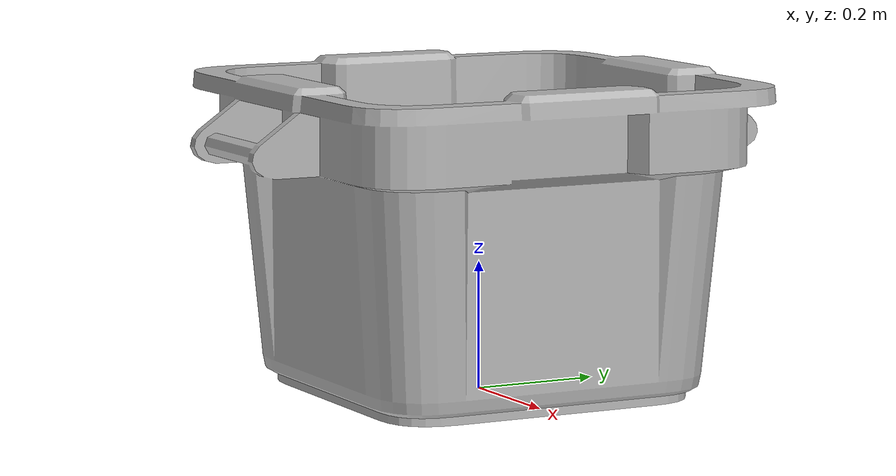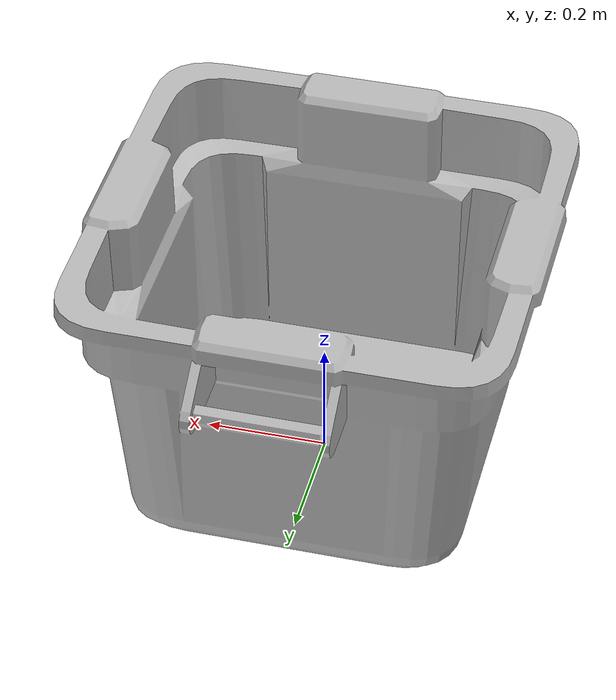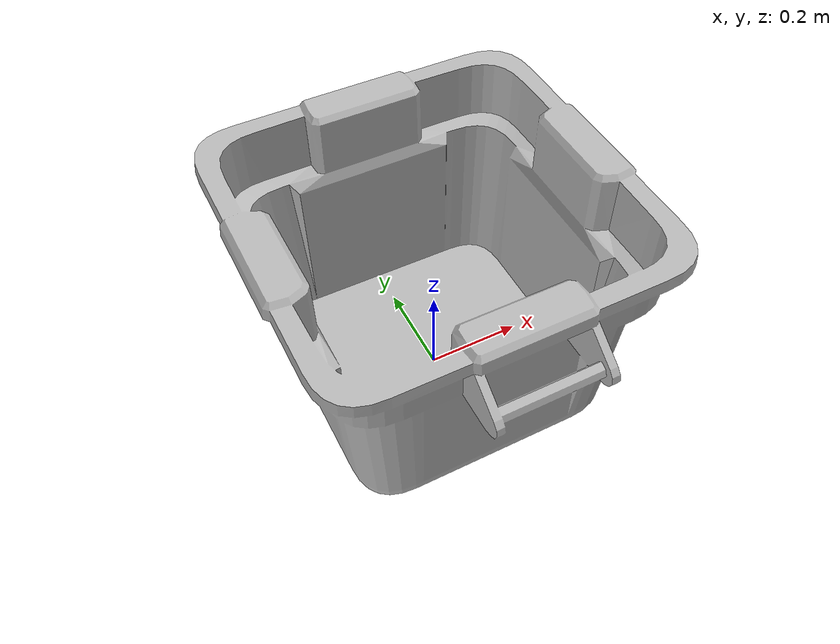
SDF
<?xml version="1.0" ?>
<sdf version="1.6">
  <model name="trash_bin_blue">
    <static>false</static>
    <link name="link">
      <inertial>
        <pose>0 0 0.0 0 0 0</pose>
        <mass>0.5</mass>
        <inertia>
          <ixx>0.0009</ixx>
          <ixy>0</ixy>
          <ixz>0</ixz>
          <iyy>0.0009</iyy>
          <iyz>0</iyz>
          <izz>0.0012</izz>
        </inertia>
      </inertial>
      <collision name='collision'>
        <pose frame=''>0 0 0 0 0 0</pose>
        <geometry>
            <mesh>
            <uri>model://trash_bin_blue/meshes/trash_bin_blue.dae</uri>
            <scale>1.2 1.2 0.8</scale>
            </mesh>
          </geometry>
        <surface>
          <contact>
            <ode>
              <max_vel>0.1</max_vel>
              <min_depth>0.001</min_depth>
            </ode>
          </contact>
        </surface>
      </collision>
      <visual name="visual">
         <geometry>
           <mesh>
             <uri>model://trash_bin_blue/meshes/trash_bin_blue.dae</uri>
             <scale>1.2 1.2 0.8</scale>
           </mesh>
         </geometry>
       </visual>
    </link>
  </model>
</sdf>
